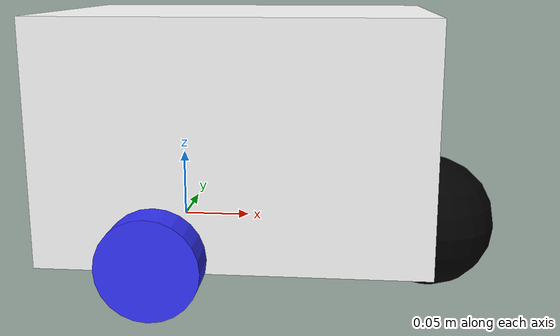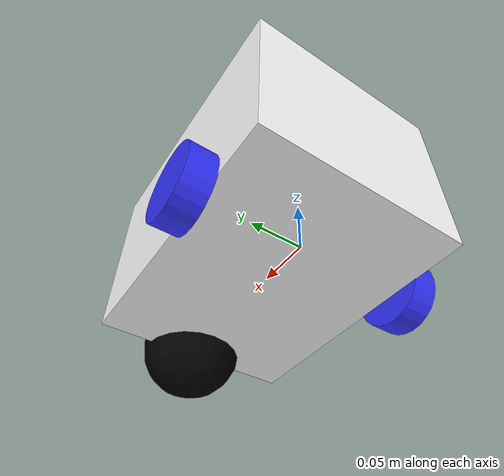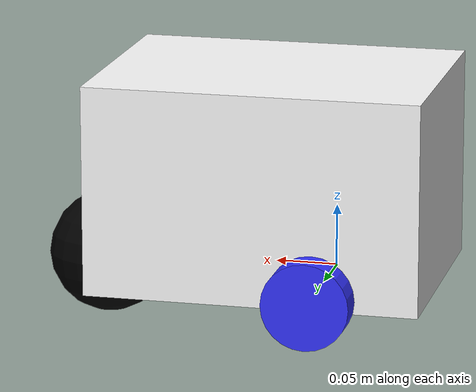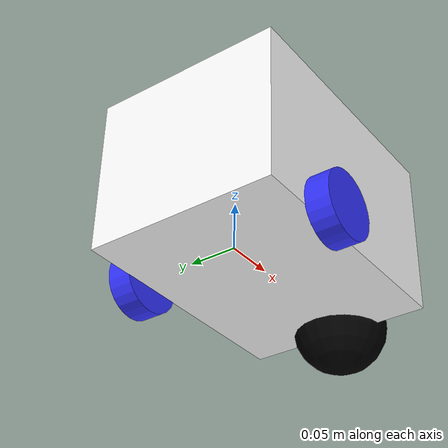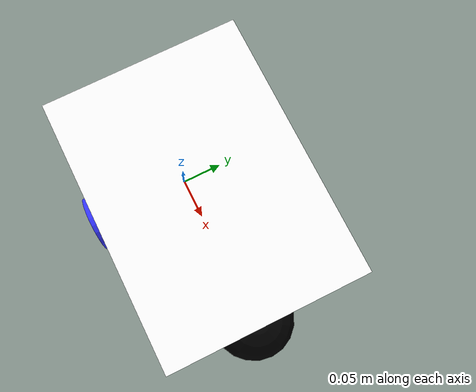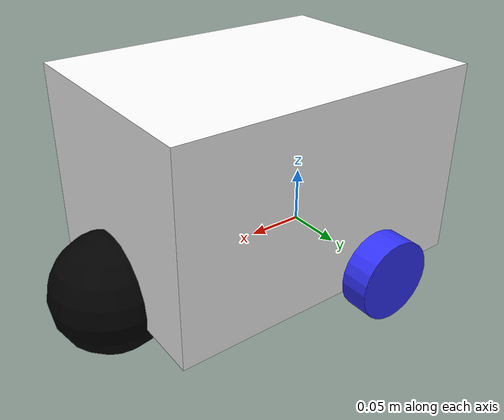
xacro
<?xml version="1.0"?>
<robot xmlns:xacro="http://www.ros.org/wiki/xacro">

    <xacro:include filename="inertial_macros.xacro" />

     <material name="white">
        <color rgba="1 1 1 1"/>
    </material>

    <material name="orange">
        <color rgba="1 0.3 0.1 1 "/>
    </material>

    <material name="blue">
        <color rgba="0.2 0.2 1 1 " />
    </material>

    <material name="black">
        <color rgba="0 0 0 1" />
    </material>

    <material name="red">
        <color rgba="1 0 0 1" />
    </material>

    <!-- Base Link -->

    <link name="base_link" >
    </link>

      <!-- BASE_FOOTPRINT LINK -->

    <joint name="base_footprint_joint" type="fixed">
        <parent link="base_link"/>
        <child link="base_footprint"/>
        <origin xyz="0 0 0" rpy="0 0 0"/>
    </joint>

    <link name="base_footprint">
    </link>

    <!-- Chassis -->

    <joint name="chassis_joint" type="fixed">
        <parent link="base_link"/>
        <child link="chassis"/>
        <origin xyz="-0.05 0 0" />
    </joint>

    <link name="chassis">
        <visual>
            <origin xyz="0.10 0 0.075" />
            <geometry>
                <box size="0.27 0.2 0.17"/>
            </geometry>
            <material name="white"/>
        </visual>
        <collision>
            <origin xyz="0.10 0 0.075" />
            <geometry>
                <box size="0.27 0.2 0.17"/>
            </geometry>
        </collision>
        <xacro:inertial_box mass="0.5" x="0.27" y="0.2" z="0.17" >
            <origin xyz="0.10 0 0.075" rpy="0 0 0"/>
        </xacro:inertial_box>
    </link>

    <gazebo reference="chassis">
        <material>Gazebo/White</material>
    </gazebo>

    <!-- LEFT WHELL LINK -->
    <!--
        112 mm is the distance between the center of the wheel and the center of the chassis
        chassi is 200 mm long
        wheel is 25 mm long
        200/2 + 25/2 = 112 mm
    -->

    <joint name="left_wheel_joint" type="continuous">
        <parent link="base_link"/>
        <child link="left_wheel"/>
        <origin xyz="0 0.112 0" rpy="-${pi/2} 0 0"/>
        <axis xyz="0 0 1" />
    </joint>

    <link name="left_wheel">
        <visual>
            <geometry>
                <cylinder radius="0.035" length="0.025"/>
            </geometry>
            <material name="blue"/>
        </visual>
         <collision>
            <geometry>
                <cylinder radius="0.035" length="0.025"/>
            </geometry>
        </collision>
        <xacro:inertial_cylinder mass="0.1" length="0.025" radius="0.035" >
            <origin xyz="0 0 0" rpy="0 0 0"/>
        </xacro:inertial_cylinder>

    </link>

    <gazebo reference="left_wheel">
        <material>Gazebo/Blue</material>
    </gazebo>

    <!-- RIGHT WHELL LINK -->

    <joint name="right_wheel_joint" type="continuous">
        <parent link="base_link"/>
        <child link="right_wheel"/>
        <origin xyz="0 -0.112 0" rpy="${pi/2} 0 0"/>
        <axis xyz="0 0 -1" />
    </joint>

    <link name="right_wheel">
        <visual>
            <geometry>
                <cylinder radius="0.035" length="0.025"/>
            </geometry>
            <material name="blue"/>
        </visual>
        <collision>
            <geometry>
                <cylinder radius="0.035" length="0.025"/>
            </geometry>
        </collision>
        <xacro:inertial_cylinder mass="0.1" length="0.025" radius="0.035" >
            <origin xyz="0 0 0" rpy="0 0 0"/>
        </xacro:inertial_cylinder>

    </link>

    <gazebo reference="right_wheel">
        <material>Gazebo/Blue</material>
    </gazebo>

    <!-- CASTER WHELL LINK -->

    <joint name="caster_wheel_joint" type="fixed">
        <parent link="chassis"/>
        <child link="caster_wheel"/>
        <origin xyz="0.24 0 0" />
    </joint>

    <link name="caster_wheel">
        <visual>
            <geometry>
                <sphere radius="0.05" />
            </geometry>
            <material name="black"/>
        </visual>
        <collision>
            <geometry>
                <sphere radius="0.05" />
            </geometry>
        </collision>
        <xacro:inertial_sphere mass="0.1" radius="0.05" >
            <origin xyz="0 0 0" rpy="0 0 0"/>
        </xacro:inertial_sphere>

    </link>

    <gazebo reference="caster_wheel">
        <material>Gazebo/Black</material>
        <mu1 value="0.001"/>
        <mu2 value="0.001"/>
    </gazebo>

</robot>
